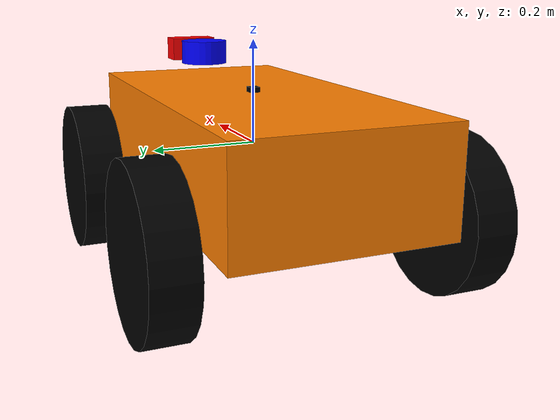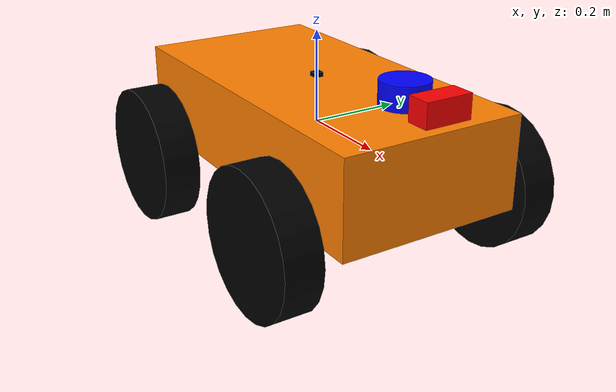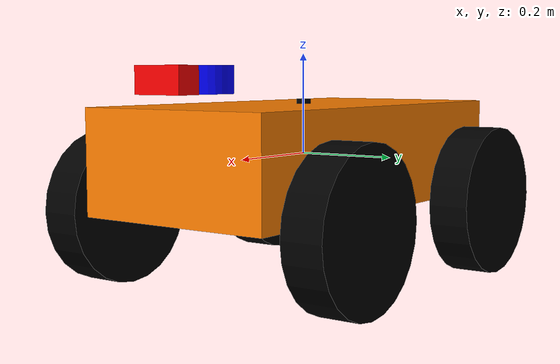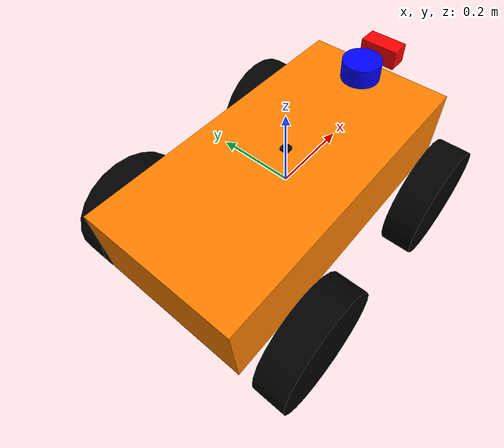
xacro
<?xml version="1.0"?>
<robot name="delivery_robot" xmlns:xacro="http://ros.org/wiki/xacro">

  <xacro:property name="chassis_length" value="0.8"/>
  <xacro:property name="chassis_width" value="0.4"/>
  <xacro:property name="chassis_height" value="0.2"/>
  <xacro:property name="wheel_radius" value="0.15"/>
  <xacro:property name="wheel_width" value="0.08"/>
  <xacro:property name="wheel_mass" value="2.0"/>
  <xacro:property name="chassis_mass" value="20.0"/>

  <xacro:property name="wheelbase" value="0.5"/>  <xacro:property name="track_width" value="0.55"/> <xacro:macro name="box_inertia" params="m w h d">
  <inertial>
    <mass value="${m}"/>
    <inertia ixx="${m/12 * (h*h + d*d)}" ixy="0" ixz="0"
             iyy="${m/12 * (w*w + d*d)}" iyz="0"
             izz="${m/12 * (w*w + h*h)}"/>
  </inertial>
</xacro:macro>

<xacro:macro name="cylinder_inertia" params="m r h">
  <inertial>
    <mass value="${m}"/>
    <inertia ixx="${m*(3*r*r + h*h)/12}" ixy="0" ixz="0"
             iyy="${m*(3*r*r + h*h)/12}" iyz="0"
             izz="${m*r*r/2}"/>
  </inertial>
</xacro:macro>

<link name="base_link">
  <visual>
    <geometry>
      <box size="${chassis_length} ${chassis_width} ${chassis_height}"/>
    </geometry>
    <material name="orange"><color rgba="1 0.5 0 1"/></material>
  </visual>
  <collision>
    <geometry>
      <box size="${chassis_length} ${chassis_width} ${chassis_height}"/>
    </geometry>
  </collision>
  <xacro:box_inertia m="${chassis_mass}" w="${chassis_width}" h="${chassis_height}" d="${chassis_length}"/>
</link>

<link name="base_footprint"/>

<joint name="base_joint" type="fixed">
  <parent link="base_link"/>
  <child link="base_footprint"/>
  <origin xyz="0 0 ${-wheel_radius}" rpy="0 0 0"/>
</joint>

<xacro:macro name="rear_wheel" params="prefix y_offset">
  <link name="${prefix}_wheel">
    <visual>
      <geometry><cylinder radius="${wheel_radius}" length="${wheel_width}"/></geometry>
      <material name="black"><color rgba="0 0 0 1"/></material>
    </visual>
    <collision>
      <geometry><cylinder radius="${wheel_radius}" length="${wheel_width}"/></geometry>
    </collision>
    <xacro:cylinder_inertia m="${wheel_mass}" r="${wheel_radius}" h="${wheel_width}"/>
  </link>

  <joint name="${prefix}_wheel_joint" type="continuous">
    <parent link="base_link"/>
    <child link="${prefix}_wheel"/>
    <origin xyz="-${wheelbase/2} ${y_offset} -${chassis_height/2}" rpy="-1.5707 0 0"/>
	<dynamics damping="0.5" friction="0.1"/>
    <axis xyz="0 0 1"/>
  </joint>
</xacro:macro>

<xacro:macro name="front_wheel" params="prefix y_offset">

  <link name="${prefix}_steering_link">
    <inertial>
      <mass value="0.1"/>
      <inertia ixx="0.01" ixy="0" ixz="0" iyy="0.01" iyz="0" izz="0.01"/>
    </inertial>
  </link>

  <joint name="${prefix}_steering_joint" type="revolute">
    <parent link="base_link"/>
    <child link="${prefix}_steering_link"/>
    <origin xyz="${wheelbase/2} ${y_offset} -${chassis_height/2}" rpy="0 0 0"/>
    <axis xyz="0 0 1"/>
    <limit lower="-0.6" upper="0.6" effort="100" velocity="1.0"/>
  </joint>

  <link name="${prefix}_wheel">
    <visual>
      <geometry><cylinder radius="${wheel_radius}" length="${wheel_width}"/></geometry>
      <material name="black"><color rgba="0 0 0 1"/></material>
    </visual>
    <collision>
      <geometry><cylinder radius="${wheel_radius}" length="${wheel_width}"/></geometry>
    </collision>
    <xacro:cylinder_inertia m="${wheel_mass}" r="${wheel_radius}" h="${wheel_width}"/>
  </link>

  <joint name="${prefix}_wheel_joint" type="continuous">
    <parent link="${prefix}_steering_link"/>
    <child link="${prefix}_wheel"/>
    <origin xyz="0 0 0" rpy="-1.5707 0 0"/>
	<dynamics damping="0.5" friction="0.1"/>
    <axis xyz="0 0 1"/>
  </joint>
</xacro:macro>

<xacro:rear_wheel prefix="rear_left" y_offset="${track_width/2}"/>
<xacro:rear_wheel prefix="rear_right" y_offset="-${track_width/2}"/>
<xacro:front_wheel prefix="front_left" y_offset="${track_width/2}"/>
<xacro:front_wheel prefix="front_right" y_offset="-${track_width/2}"/>

<link name="lidar_link">
  <visual>
    <geometry><cylinder radius="0.05" length="0.05"/></geometry>
    <material name="blue"><color rgba="0 0 1 1"/></material>
  </visual>
</link>
<joint name="lidar_joint" type="fixed">
  <parent link="base_link"/>
  <child link="lidar_link"/>
  <origin xyz="${chassis_length/2 - 0.1} 0 ${chassis_height/2 + 0.05}" rpy="0 0 0"/>
</joint>

<link name="camera_link">
  <visual>
    <geometry><box size="0.05 0.1 0.05"/></geometry>
    <material name="red"><color rgba="1 0 0 1"/></material>
  </visual>
</link>
<joint name="camera_joint" type="fixed">
  <parent link="base_link"/>
  <child link="camera_link"/>
  <origin xyz="${chassis_length/2} 0 0.15" rpy="0 0 0"/>
</joint>

<link name="gps_link"/>
<joint name="gps_joint" type="fixed">
  <parent link="base_link"/>
  <child link="gps_link"/>
  <origin xyz="0 0 0" rpy="0 0 0"/>
</joint>
<link name="imu_link">
  <visual>
    <geometry><box size="0.02 0.02 0.02"/></geometry>
    <material name="black"><color rgba="0 0 0 1"/></material>
  </visual>
</link>

<joint name="imu_joint" type="fixed">
  <parent link="base_link"/>
  <child link="imu_link"/>
  <origin xyz="0 0 0.1" rpy="0 0 0"/>
</joint>

<gazebo reference="imu_link">
  <sensor name="imu_sensor" type="imu">
    <always_on>1</always_on>
    <update_rate>100</update_rate>
    <visualize>true</visualize>
    <topic>/imu</topic> <imu>
    <angular_velocity>
      <x>
        <noise type="gaussian">
          <mean>0.0</mean>
          <stddev>2e-4</stddev>
        </noise>
      </x>
      <y>
        <noise type="gaussian">
          <mean>0.0</mean>
          <stddev>2e-4</stddev>
        </noise>
      </y>
      <z>
        <noise type="gaussian">
          <mean>0.05</mean> <!-- Simulate drift -->
          <stddev>2e-4</stddev>
        </noise>
      </z>
    </angular_velocity>
    <linear_acceleration>
      <x>
        <noise type="gaussian">
          <mean>0.0</mean>
          <stddev>1.7e-2</stddev>
        </noise>
      </x>
      <y>
        <noise type="gaussian">
          <mean>0.0</mean>
          <stddev>1.7e-2</stddev>
        </noise>
      </y>
      <z>
        <noise type="gaussian">
          <mean>0.0</mean>
          <stddev>1.7e-2</stddev>
        </noise>
      </z>
    </linear_acceleration>
  </imu>
  </sensor>
</gazebo>

<gazebo>
  <plugin filename="gz-sim-joint-state-publisher-system"
		  name="gz::sim::systems::JointStatePublisher">
	<topic>joint_states</topic>
  </plugin>

  <plugin filename="gz-sim-ackermann-steering-system" name="gz::sim::systems::AckermannSteering">

	<left_joint>rear_left_wheel_joint</left_joint>
	<right_joint>rear_right_wheel_joint</right_joint>

	<left_steering_joint>front_left_steering_joint</left_steering_joint>
	<right_steering_joint>front_right_steering_joint</right_steering_joint>

	<wheel_separation>0.55</wheel_separation>
	<wheel_base>0.50</wheel_base>
	<wheel_radius>0.15</wheel_radius>

	<min_velocity>-5.0</min_velocity>
	<max_velocity>5.0</max_velocity>
	<min_acceleration>-3.0</min_acceleration>
	<max_acceleration>3.0</max_acceleration>

	<topic>/cmd_vel</topic>
	<odom_topic>/odom</odom_topic>
	<frame_id>odom</frame_id>
	<child_frame_id>base_footprint</child_frame_id>

	<publish_odom>false</publish_odom>
	<publish_odom_tf>false</publish_odom_tf>
	<publish_wheel_tf>true</publish_wheel_tf>
	<publish_wheel_joint_state>true</publish_wheel_joint_state>
  </plugin>

  <plugin filename="gz-sim-sensors-system" name="gz::sim::systems::Sensors">
    <render_engine>ogre2</render_engine>
  </plugin>

  <plugin filename="gz-sim-imu-system"
          name="gz::sim::systems::Imu">
  </plugin>

  <plugin filename="gz-sim-navsat-system"
          name="gz::sim::systems::NavSat">
  </plugin>
</gazebo>

<gazebo reference="camera_link">
  <sensor name="rgbd_camera" type="rgbd_camera">
	<camera>
	  <horizontal_fov>1.047</horizontal_fov>
	  <image>
		<width>640</width>
		<height>480</height>
	  </image>
	  <clip>
		<near>0.1</near>
		<far>100</far>
	  </clip>
	</camera>
	<always_on>1</always_on>
	<update_rate>30</update_rate>
	<visualize>true</visualize>
  <topic>/camera/image</topic> </sensor>
</gazebo>

<gazebo reference="lidar_link">
  <sensor name="lidar" type="gpu_lidar">
    <pose>0 0 0 0 0 0</pose>
    <topic>/scan</topic>
    <update_rate>10</update_rate>

    <gz_frame_id>lidar_link</gz_frame_id>

    <ray>
      <scan>
        <horizontal>
          <samples>360</samples>
          <resolution>1</resolution>
          <min_angle>-3.14</min_angle>
          <max_angle>3.14</max_angle>
        </horizontal>
      </scan>
      <range>
        <min>0.1</min>
        <max>20.0</max>
      </range>
    </ray>
    <always_on>1</always_on>
    <visualize>true</visualize>
  </sensor>
</gazebo>

<gazebo reference="gps_link">
  <sensor name="gps" type="navsat">
    <topic>/gps/fix</topic>
    <update_rate>5</update_rate>
    <always_on>1</always_on>
  </sensor>
</gazebo>

<gazebo reference="rear_left_wheel">
  <mu1>1.0</mu1>
  <mu2>1.0</mu2>
  <kp>1e6</kp>
  <kd>1.0</kd>
  <minDepth>0.001</minDepth>
</gazebo>

<gazebo reference="rear_right_wheel">
  <mu1>1.0</mu1>
  <mu2>1.0</mu2>
  <kp>1e6</kp>
  <kd>1.0</kd>
  <minDepth>0.001</minDepth>
</gazebo>

<gazebo reference="front_left_wheel">
  <mu1>1.0</mu1>
  <mu2>1.0</mu2>
  <kp>1e6</kp>
  <kd>1.0</kd>
  <minDepth>0.001</minDepth>
</gazebo>

<gazebo reference="front_right_wheel">
  <mu1>1.0</mu1>
  <mu2>1.0</mu2>
  <kp>1e6</kp>
  <kd>1.0</kd>
  <minDepth>0.001</minDepth>
</gazebo>

</robot>
